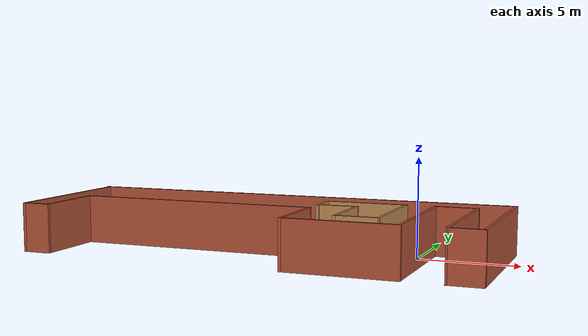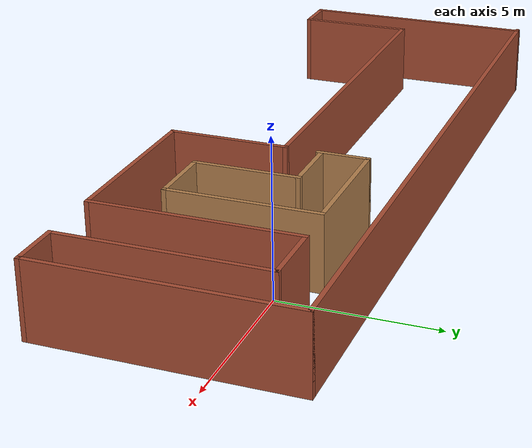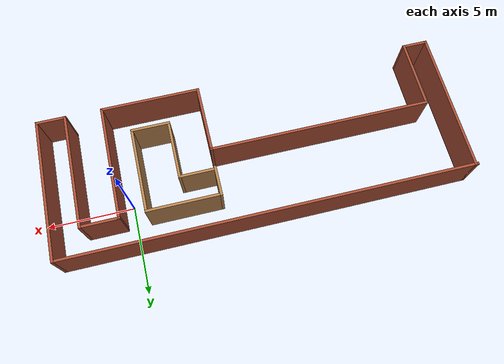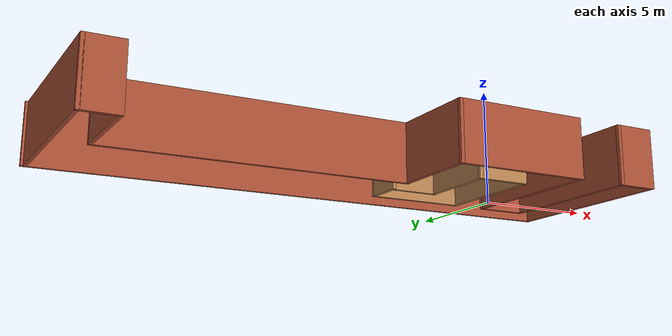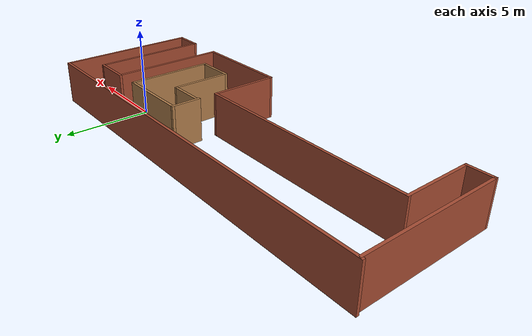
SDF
<?xml version='1.0'?>
<sdf version='1.6'>
  <model name='building1'>
    <pose frame=''>-7.40701 -1.35713 0 0 -0 0</pose>
    <link name='Wall_10'>
      <collision name='Wall_10_Collision'>
        <geometry>
          <box>
            <size>12.75 0.15 2.5</size>
          </box>
        </geometry>
        <pose frame=''>0 0 1.25 0 -0 0</pose>
      </collision>
      <visual name='Wall_10_Visual'>
        <pose frame=''>0 0 1.25 0 -0 0</pose>
        <geometry>
          <box>
            <size>12.75 0.15 2.5</size>
          </box>
        </geometry>
        <material>
          <script>
            <uri>file://media/materials/scripts/gazebo.material</uri>
            <name>Gazebo/Bricks</name>
          </script>
          <ambient>1 1 1 1</ambient>
        </material>
      </visual>
      <pose frame=''>-3.925 -0.2 0 0 -0 3.14159</pose>
    </link>
    <link name='Wall_11'>
      <collision name='Wall_11_Collision'>
        <geometry>
          <box>
            <size>4 0.15 2.5</size>
          </box>
        </geometry>
        <pose frame=''>0 0 1.25 0 -0 0</pose>
      </collision>
      <visual name='Wall_11_Visual'>
        <pose frame=''>0 0 1.25 0 -0 0</pose>
        <geometry>
          <box>
            <size>4 0.15 2.5</size>
          </box>
        </geometry>
        <material>
          <script>
            <uri>file://media/materials/scripts/gazebo.material</uri>
            <name>Gazebo/Bricks</name>
          </script>
          <ambient>1 1 1 1</ambient>
        </material>
      </visual>
      <pose frame=''>-10.225 -2.125 0 0 0 -1.5708</pose>
    </link>
    <link name='Wall_12'>
      <collision name='Wall_12_Collision'>
        <geometry>
          <box>
            <size>1.5 0.15 2.5</size>
          </box>
        </geometry>
        <pose frame=''>0 0 1.25 0 -0 0</pose>
      </collision>
      <visual name='Wall_12_Visual'>
        <pose frame=''>0 0 1.25 0 -0 0</pose>
        <geometry>
          <box>
            <size>1.5 0.15 2.5</size>
          </box>
        </geometry>
        <material>
          <script>
            <uri>file://media/materials/scripts/gazebo.material</uri>
            <name>Gazebo/Bricks</name>
          </script>
          <ambient>1 1 1 1</ambient>
        </material>
      </visual>
      <pose frame=''>-10.9 -4.05 0 0 -0 3.14159</pose>
    </link>
    <link name='Wall_13'>
      <collision name='Wall_13_Collision'>
        <geometry>
          <box>
            <size>8.25 0.15 2.5</size>
          </box>
        </geometry>
        <pose frame=''>0 0 1.25 0 -0 0</pose>
      </collision>
      <visual name='Wall_13_Visual'>
        <pose frame=''>0 0 1.25 0 -0 0</pose>
        <geometry>
          <box>
            <size>8.25 0.15 2.5</size>
          </box>
        </geometry>
        <material>
          <script>
            <uri>file://media/materials/scripts/gazebo.material</uri>
            <name>Gazebo/Bricks</name>
          </script>
          <ambient>1 1 1 1</ambient>
        </material>
      </visual>
      <pose frame=''>-11.575 0 0 0 -0 1.5708</pose>
    </link>
    <link name='Wall_15'>
      <collision name='Wall_15_Collision'>
        <geometry>
          <box>
            <size>4.25 0.15 2.5</size>
          </box>
        </geometry>
        <pose frame=''>0 0 1.25 0 -0 0</pose>
      </collision>
      <visual name='Wall_15_Visual'>
        <pose frame=''>0 0 1.25 0 -0 0</pose>
        <geometry>
          <box>
            <size>4.25 0.15 2.5</size>
          </box>
        </geometry>
        <material>
          <script>
            <uri>file://media/materials/scripts/gazebo.material</uri>
            <name>Gazebo/Wood</name>
          </script>
          <ambient>1 1 1 1</ambient>
        </material>
      </visual>
      <pose frame=''>4.45648 2.49777 0 0 -0 0</pose>
    </link>
    <link name='Wall_16'>
      <collision name='Wall_16_Collision'>
        <geometry>
          <box>
            <size>5 0.15 2.5</size>
          </box>
        </geometry>
        <pose frame=''>0 0 1.25 0 -0 0</pose>
      </collision>
      <visual name='Wall_16_Visual'>
        <pose frame=''>0 0 1.25 0 -0 0</pose>
        <geometry>
          <box>
            <size>5 0.15 2.5</size>
          </box>
        </geometry>
        <material>
          <script>
            <uri>file://media/materials/scripts/gazebo.material</uri>
            <name>Gazebo/Wood</name>
          </script>
          <ambient>1 1 1 1</ambient>
        </material>
      </visual>
      <pose frame=''>6.50648 0.072769 0 0 0 -1.5708</pose>
    </link>
    <link name='Wall_17'>
      <collision name='Wall_17_Collision'>
        <geometry>
          <box>
            <size>2.25 0.15 2.5</size>
          </box>
        </geometry>
        <pose frame=''>0 0 1.25 0 -0 0</pose>
      </collision>
      <visual name='Wall_17_Visual'>
        <pose frame=''>0 0 1.25 0 -0 0</pose>
        <geometry>
          <box>
            <size>2.25 0.15 2.5</size>
          </box>
        </geometry>
        <material>
          <script>
            <uri>file://media/materials/scripts/gazebo.material</uri>
            <name>Gazebo/Wood</name>
          </script>
          <ambient>1 1 1 1</ambient>
        </material>
      </visual>
      <pose frame=''>5.45648 -2.35223 0 0 -0 3.14159</pose>
    </link>
    <link name='Wall_18'>
      <collision name='Wall_18_Collision'>
        <geometry>
          <box>
            <size>3.5 0.15 2.5</size>
          </box>
        </geometry>
        <pose frame=''>0 0 1.25 0 -0 0</pose>
      </collision>
      <visual name='Wall_18_Visual'>
        <pose frame=''>0 0 1.25 0 -0 0</pose>
        <geometry>
          <box>
            <size>3.5 0.15 2.5</size>
          </box>
        </geometry>
        <material>
          <script>
            <uri>file://media/materials/scripts/gazebo.material</uri>
            <name>Gazebo/Wood</name>
          </script>
          <ambient>1 1 1 1</ambient>
        </material>
      </visual>
      <pose frame=''>4.40648 -0.677231 0 0 -0 1.5708</pose>
    </link>
    <link name='Wall_19'>
      <collision name='Wall_19_Collision'>
        <geometry>
          <box>
            <size>2 0.15 2.5</size>
          </box>
        </geometry>
        <pose frame=''>0 0 1.25 0 -0 0</pose>
      </collision>
      <visual name='Wall_19_Visual'>
        <pose frame=''>0 0 1.25 0 -0 0</pose>
        <geometry>
          <box>
            <size>2 0.15 2.5</size>
          </box>
        </geometry>
        <material>
          <script>
            <uri>file://media/materials/scripts/gazebo.material</uri>
            <name>Gazebo/Wood</name>
          </script>
          <ambient>1 1 1 1</ambient>
        </material>
      </visual>
      <pose frame=''>3.48148 0.997769 0 0 -0 3.14159</pose>
    </link>
    <link name='Wall_2'>
      <collision name='Wall_2_Collision'>
        <geometry>
          <box>
            <size>23.5 0.15 2.5</size>
          </box>
        </geometry>
        <pose frame=''>0 0 1.25 0 -0 0</pose>
      </collision>
      <visual name='Wall_2_Visual'>
        <pose frame=''>0 0 1.25 0 -0 0</pose>
        <geometry>
          <box>
            <size>23.5 0.15 2.5</size>
          </box>
        </geometry>
        <material>
          <script>
            <uri>file://media/materials/scripts/gazebo.material</uri>
            <name>Gazebo/Bricks</name>
          </script>
          <ambient>1 1 1 1</ambient>
        </material>
      </visual>
      <pose frame=''>0 4.05 0 0 -0 0</pose>
    </link>
    <link name='Wall_22'>
      <collision name='Wall_22_Collision'>
        <geometry>
          <box>
            <size>1.75 0.15 2.5</size>
          </box>
        </geometry>
        <pose frame=''>0 0 1.25 0 -0 0</pose>
      </collision>
      <visual name='Wall_22_Visual'>
        <pose frame=''>0 0 1.25 0 -0 0</pose>
        <geometry>
          <box>
            <size>1.75 0.15 2.5</size>
          </box>
        </geometry>
        <material>
          <script>
            <uri>file://media/materials/scripts/gazebo.material</uri>
            <name>Gazebo/Wood</name>
          </script>
          <ambient>1 1 1 1</ambient>
        </material>
      </visual>
      <pose frame=''>2.40648 1.69777 0 0 0 -1.5708</pose>
    </link>
    <link name='Wall_3'>
      <collision name='Wall_3_Collision'>
        <geometry>
          <box>
            <size>8.25 0.15 2.5</size>
          </box>
        </geometry>
        <pose frame=''>0 0 1.25 0 -0 0</pose>
      </collision>
      <visual name='Wall_3_Visual'>
        <pose frame=''>0 0 1.25 0 -0 0</pose>
        <geometry>
          <box>
            <size>8.25 0.15 2.5</size>
          </box>
        </geometry>
        <material>
          <script>
            <uri>file://media/materials/scripts/gazebo.material</uri>
            <name>Gazebo/Bricks</name>
          </script>
          <ambient>1 1 1 1</ambient>
        </material>
      </visual>
      <pose frame=''>11.675 0 0 0 0 -1.5708</pose>
    </link>
    <link name='Wall_4'>
      <collision name='Wall_4_Collision'>
        <geometry>
          <box>
            <size>1.75 0.15 2.5</size>
          </box>
        </geometry>
        <pose frame=''>0 0 1.25 0 -0 0</pose>
      </collision>
      <visual name='Wall_4_Visual'>
        <pose frame=''>0 0 1.25 0 -0 0</pose>
        <geometry>
          <box>
            <size>1.75 0.15 2.5</size>
          </box>
        </geometry>
        <material>
          <script>
            <uri>file://media/materials/scripts/gazebo.material</uri>
            <name>Gazebo/Bricks</name>
          </script>
          <ambient>1 1 1 1</ambient>
        </material>
      </visual>
      <pose frame=''>10.875 -4.05 0 0 -0 3.14159</pose>
    </link>
    <link name='Wall_5'>
      <collision name='Wall_5_Collision'>
        <geometry>
          <box>
            <size>6.75 0.15 2.5</size>
          </box>
        </geometry>
        <pose frame=''>0 0 1.25 0 -0 0</pose>
      </collision>
      <visual name='Wall_5_Visual'>
        <pose frame=''>0 0 1.25 0 -0 0</pose>
        <geometry>
          <box>
            <size>6.75 0.15 2.5</size>
          </box>
        </geometry>
        <material>
          <script>
            <uri>file://media/materials/scripts/gazebo.material</uri>
            <name>Gazebo/Bricks</name>
          </script>
          <ambient>1 1 1 1</ambient>
        </material>
      </visual>
      <pose frame=''>10.075 -0.75 0 0 -0 1.5708</pose>
    </link>
    <link name='Wall_6'>
      <collision name='Wall_6_Collision'>
        <geometry>
          <box>
            <size>2.25 0.15 2.5</size>
          </box>
        </geometry>
        <pose frame=''>0 0 1.25 0 -0 0</pose>
      </collision>
      <visual name='Wall_6_Visual'>
        <pose frame=''>0 0 1.25 0 -0 0</pose>
        <geometry>
          <box>
            <size>2.25 0.15 2.5</size>
          </box>
        </geometry>
        <material>
          <script>
            <uri>file://media/materials/scripts/gazebo.material</uri>
            <name>Gazebo/Bricks</name>
          </script>
          <ambient>1 1 1 1</ambient>
        </material>
      </visual>
      <pose frame=''>9.025 2.55 0 0 -0 3.14159</pose>
    </link>
    <link name='Wall_7'>
      <collision name='Wall_7_Collision'>
        <geometry>
          <box>
            <size>6.75 0.15 2.5</size>
          </box>
        </geometry>
        <pose frame=''>0 0 1.25 0 -0 0</pose>
      </collision>
      <visual name='Wall_7_Visual'>
        <pose frame=''>0 0 1.25 0 -0 0</pose>
        <geometry>
          <box>
            <size>6.75 0.15 2.5</size>
          </box>
        </geometry>
        <material>
          <script>
            <uri>file://media/materials/scripts/gazebo.material</uri>
            <name>Gazebo/Bricks</name>
          </script>
          <ambient>1 1 1 1</ambient>
        </material>
      </visual>
      <pose frame=''>7.975 -0.75 0 0 0 -1.5708</pose>
    </link>
    <link name='Wall_8'>
      <collision name='Wall_8_Collision'>
        <geometry>
          <box>
            <size>5.75 0.15 2.5</size>
          </box>
        </geometry>
        <pose frame=''>0 0 1.25 0 -0 0</pose>
      </collision>
      <visual name='Wall_8_Visual'>
        <pose frame=''>0 0 1.25 0 -0 0</pose>
        <geometry>
          <box>
            <size>5.75 0.15 2.5</size>
          </box>
        </geometry>
        <material>
          <script>
            <uri>file://media/materials/scripts/gazebo.material</uri>
            <name>Gazebo/Bricks</name>
          </script>
          <ambient>1 1 1 1</ambient>
        </material>
      </visual>
      <pose frame=''>5.175 -4.05 0 0 -0 3.14159</pose>
    </link>
    <link name='Wall_9'>
      <collision name='Wall_9_Collision'>
        <geometry>
          <box>
            <size>4 0.15 2.5</size>
          </box>
        </geometry>
        <pose frame=''>0 0 1.25 0 -0 0</pose>
      </collision>
      <visual name='Wall_9_Visual'>
        <pose frame=''>0 0 1.25 0 -0 0</pose>
        <geometry>
          <box>
            <size>4 0.15 2.5</size>
          </box>
        </geometry>
        <material>
          <script>
            <uri>file://media/materials/scripts/gazebo.material</uri>
            <name>Gazebo/Bricks</name>
          </script>
          <ambient>1 1 1 1</ambient>
        </material>
      </visual>
      <pose frame=''>2.375 -2.125 0 0 -0 1.5708</pose>
    </link>
    <static>1</static>
  </model>
</sdf>
